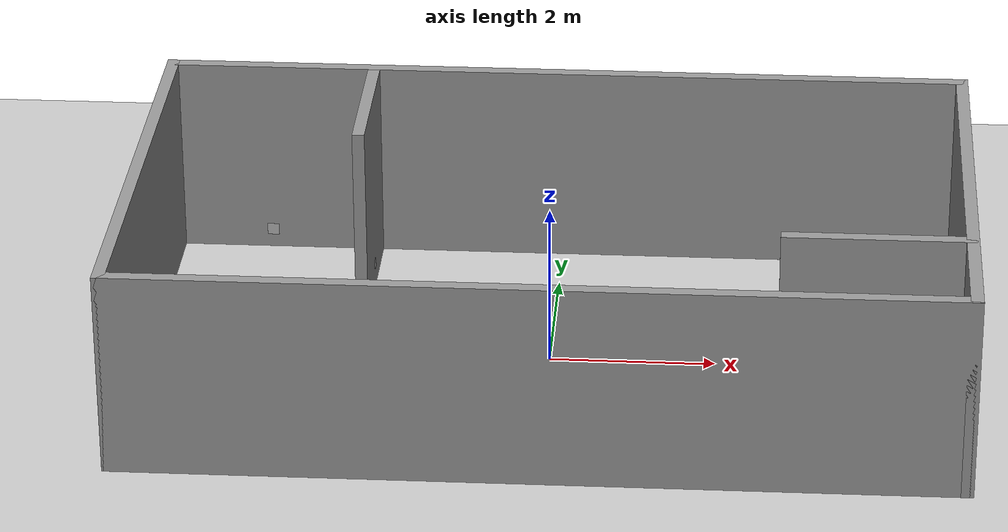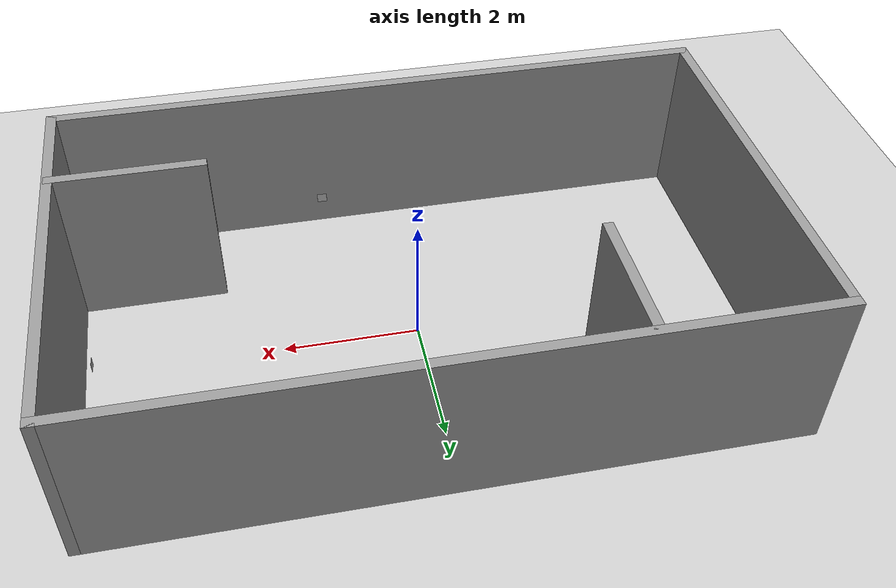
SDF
<sdf version="1.7">
 <world name="default">
  <light name="sun" type="directional">
   <pose>0 0 10 0 -0 0</pose>
   <diffuse>0.8 0.8 0.8 1</diffuse>
   <specular>0.2 0.2 0.2 1</specular>
   <attenuation>
    <range>1000</range>
    <constant>0.9</constant>
    <linear>0.01</linear>
    <quadratic>0.001</quadratic>
   </attenuation>
   <direction>-0.5 0.1 -0.9</direction>
   <spot><inner_angle>0</inner_angle><outer_angle>0</outer_angle><falloff>0</falloff></spot>
  </light>
  <model name="ground_plane">
   <static>1</static>
   <link name="link">
    <collision name="collision">
     <geometry><plane><normal>0 0 1</normal><size>100 100</size></plane></geometry>
     <surface><friction><ode><mu>100</mu><mu2>50</mu2></ode></friction></surface>
    </collision>
    <visual name="visual">
     <cast_shadows>0</cast_shadows>
     <geometry><plane><normal>0 0 1</normal><size>100 100</size></plane></geometry>
     <material>
      <script><uri>file://media/materials/scripts/gazebo.material</uri><name>Gazebo/Grey</name></script>
     </material>
    </visual>
   </link>
  </model>
  <gravity>0 0 -9.8</gravity>
  <magnetic_field>6e-06 2.3e-05 -4.2e-05</magnetic_field>
  <atmosphere type="adiabatic"/>
  <physics type="ode">
   <max_step_size>0.001</max_step_size>
   <real_time_factor>1</real_time_factor>
   <real_time_update_rate>1000</real_time_update_rate>
  </physics>
  <scene><ambient>0.4 0.4 0.4 1</ambient><background>0.7 0.7 0.7 1</background><shadows>1</shadows></scene>
  <spherical_coordinates>
   <surface_model>EARTH_WGS84</surface_model>
   <latitude_deg>0</latitude_deg>
   <longitude_deg>0</longitude_deg>
   <elevation>0</elevation>
   <heading_deg>0</heading_deg>
  </spherical_coordinates>
  <model name="simple_room">
   <pose>0.017025 -0.01812 0 0 -0 0</pose>
   <link name="Wall_0">
    <collision name="Wall_0_Collision">
     <geometry><box><size>10 0.15 2.5</size></box></geometry>
     <pose>0 0 1.25 0 -0 0</pose>
    </collision>
    <visual name="Wall_0_Visual">
     <pose>0 0 1.25 0 -0 0</pose>
     <geometry><box><size>10 0.15 2.5</size></box></geometry>
     <material>
      <script><uri>file://media/materials/scripts/gazebo.material</uri><name>Gazebo/Grey</name></script>
      <ambient>1 1 1 1</ambient>
     </material>
     <meta><layer>0</layer></meta>
    </visual>
    <pose>-0 -2.925 0 0 -0 0</pose>
   </link>
   <link name="Wall_10">
    <collision name="Wall_10_Collision">
     <geometry><box><size>2.25 0.15 2.5</size></box></geometry>
     <pose>0 0 1.25 0 -0 0</pose>
    </collision>
    <visual name="Wall_10_Visual">
     <pose>0 0 1.25 0 -0 0</pose>
     <geometry><box><size>2.25 0.15 2.5</size></box></geometry>
     <material>
      <script><uri>file://media/materials/scripts/gazebo.material</uri><name>Gazebo/Grey</name></script>
      <ambient>1 1 1 1</ambient>
     </material>
     <meta><layer>0</layer></meta>
    </visual>
    <pose>3.85173 -1.43517 0 0 -0 3.14159</pose>
   </link>
   <link name="Wall_4">
    <collision name="Wall_4_Collision">
     <geometry><box><size>6 0.15 2.5</size></box></geometry>
     <pose>0 0 1.25 0 -0 0</pose>
    </collision>
    <visual name="Wall_4_Visual">
     <pose>0 0 1.25 0 -0 0</pose>
     <geometry><box><size>6 0.15 2.5</size></box></geometry>
     <material>
      <script><uri>file://media/materials/scripts/gazebo.material</uri><name>Gazebo/Grey</name></script>
      <ambient>1 1 1 1</ambient>
     </material>
     <meta><layer>0</layer></meta>
    </visual>
    <pose>4.925 -0 0 0 -0 1.5708</pose>
   </link>
   <link name="Wall_5">
    <collision name="Wall_5_Collision">
     <geometry><box><size>10 0.15 2.5</size></box></geometry>
     <pose>0 0 1.25 0 -0 0</pose>
    </collision>
    <visual name="Wall_5_Visual">
     <pose>0 0 1.25 0 -0 0</pose>
     <geometry><box><size>10 0.15 2.5</size></box></geometry>
     <material>
      <script><uri>file://media/materials/scripts/gazebo.material</uri><name>Gazebo/Grey</name></script>
      <ambient>1 1 1 1</ambient>
     </material>
     <meta><layer>0</layer></meta>
    </visual>
    <pose>-0 2.925 0 0 -0 3.14159</pose>
   </link>
   <link name="Wall_6">
    <collision name="Wall_6_Collision">
     <geometry><box><size>6 0.15 2.5</size></box></geometry>
     <pose>0 0 1.25 0 -0 0</pose>
    </collision>
    <visual name="Wall_6_Visual">
     <pose>0 0 1.25 0 -0 0</pose>
     <geometry><box><size>6 0.15 2.5</size></box></geometry>
     <material>
      <script><uri>file://media/materials/scripts/gazebo.material</uri><name>Gazebo/Grey</name></script>
      <ambient>1 1 1 1</ambient>
     </material>
     <meta><layer>0</layer></meta>
    </visual>
    <pose>-4.925 -0 0 0 -0 -1.5708</pose>
   </link>
   <link name="Wall_8">
    <collision name="Wall_8_Collision">
     <geometry><box><size>2 0.15 2.5</size></box></geometry>
     <pose>0 0 1.25 0 -0 0</pose>
    </collision>
    <visual name="Wall_8_Visual">
     <pose>0 0 1.25 0 -0 0</pose>
     <geometry><box><size>2 0.15 2.5</size></box></geometry>
     <material>
      <script><uri>file://media/materials/scripts/gazebo.material</uri><name>Gazebo/Grey</name></script>
      <ambient>1 1 1 1</ambient>
     </material>
     <meta><layer>0</layer></meta>
    </visual>
    <pose>-2.39163 1.9249 0 0 -0 -1.5708</pose>
   </link>
   <static>1</static>
  </model>
  <model name="aruco_marker_1">
   <link name="link">
    <inertial>
     <mass>0.001</mass>
     <inertia>
      <ixx>3.75e-06</ixx>
      <ixy>0</ixy>
      <ixz>0</ixz>
      <iyy>1.875e-06</iyy>
      <iyz>0</iyz>
      <izz>1.875e-06</izz>
     </inertia>
    </inertial>
    <visual name="front_visual">
     <pose>5e-05 0 0 0 -0 0</pose>
     <geometry><box><size>0.0001 0.15 0.15</size></box></geometry>
     <material>
      <script>
       <uri>model://aruco_marker_1/materials/scripts</uri>
       <uri>model://aruco_marker_1/materials/textures</uri>
       <name>Marker1</name>
      </script>
     </material>
    </visual>
    <visual name="rear_visual">
     <pose>-5e-05 0 0 0 -0 0</pose>
     <geometry><box><size>0.0001 0.15 0.15</size></box></geometry>
    </visual>
    <collision name="collision"><geometry><box><size>0.0001 0.15 0.15</size></box></geometry></collision>
   </link>
   <static>1</static>
   <pose>-3.70201 2.80046 0.257173 0 0 -1.65685</pose>
  </model>
  <model name="aruco_marker_2">
   <link name="link">
    <inertial>
     <mass>0.001</mass>
     <inertia>
      <ixx>3.75e-06</ixx>
      <ixy>0</ixy>
      <ixz>0</ixz>
      <iyy>1.875e-06</iyy>
      <iyz>0</iyz>
      <izz>1.875e-06</izz>
     </inertia>
    </inertial>
    <visual name="front_visual">
     <pose>5e-05 0 0 0 -0 0</pose>
     <geometry><box><size>0.0001 0.15 0.15</size></box></geometry>
     <material>
      <script>
       <uri>model://aruco_marker_2/materials/scripts</uri>
       <uri>model://aruco_marker_2/materials/textures</uri>
       <name>Marker2</name>
      </script>
     </material>
    </visual>
    <visual name="rear_visual">
     <pose>-5e-05 0 0 0 -0 0</pose>
     <geometry><box><size>0.0001 0.15 0.15</size></box></geometry>
    </visual>
    <collision name="collision"><geometry><box><size>0.0001 0.15 0.15</size></box></geometry></collision>
   </link>
   <static>1</static>
   <pose>-2.26868 1.54328 0.445958 0 -0 0</pose>
  </model>
  <model name="aruco_marker_3">
   <link name="link">
    <inertial>
     <mass>0.001</mass>
     <inertia>
      <ixx>3.75e-06</ixx>
      <ixy>0</ixy>
      <ixz>0</ixz>
      <iyy>1.875e-06</iyy>
      <iyz>0</iyz>
      <izz>1.875e-06</izz>
     </inertia>
    </inertial>
    <visual name="front_visual">
     <pose>5e-05 0 0 0 -0 0</pose>
     <geometry><box><size>0.0001 0.15 0.15</size></box></geometry>
     <material>
      <script>
       <uri>model://aruco_marker_3/materials/scripts</uri>
       <uri>model://aruco_marker_3/materials/textures</uri>
       <name>Marker3</name>
      </script>
     </material>
    </visual>
    <visual name="rear_visual">
     <pose>-5e-05 0 0 0 -0 0</pose>
     <geometry><box><size>0.0001 0.15 0.15</size></box></geometry>
    </visual>
    <collision name="collision"><geometry><box><size>0.0001 0.15 0.15</size></box></geometry></collision>
   </link>
   <static>1</static>
   <pose>4.73586 0.006823 0.2592 0 -0 3.08917</pose>
  </model>
  <model name="aruco_marker_4">
   <link name="link">
    <inertial>
     <mass>0.001</mass>
     <inertia>
      <ixx>3.75e-06</ixx>
      <ixy>0</ixy>
      <ixz>0</ixz>
      <iyy>1.875e-06</iyy>
      <iyz>0</iyz>
      <izz>1.875e-06</izz>
     </inertia>
    </inertial>
    <visual name="front_visual">
     <pose>5e-05 0 0 0 -0 0</pose>
     <geometry><box><size>0.0001 0.15 0.15</size></box></geometry>
     <material>
      <script>
       <uri>model://aruco_marker_4/materials/scripts</uri>
       <uri>model://aruco_marker_4/materials/textures</uri>
       <name>Marker4</name>
      </script>
     </material>
    </visual>
    <visual name="rear_visual">
     <pose>-5e-05 0 0 0 -0 0</pose>
     <geometry><box><size>0.0001 0.15 0.15</size></box></geometry>
    </visual>
    <collision name="collision"><geometry><box><size>0.0001 0.15 0.15</size></box></geometry></collision>
   </link>
   <static>1</static>
   <pose>1.04418 -2.82935 0.482753 0 -0 1.50641</pose>
  </model>
 </world>
 <include><pose>-2.0 -0.5 0.01 0.0 0.0 0.0</pose><uri>model://turtlebot3_waffle_pi</uri></include>
</sdf>
